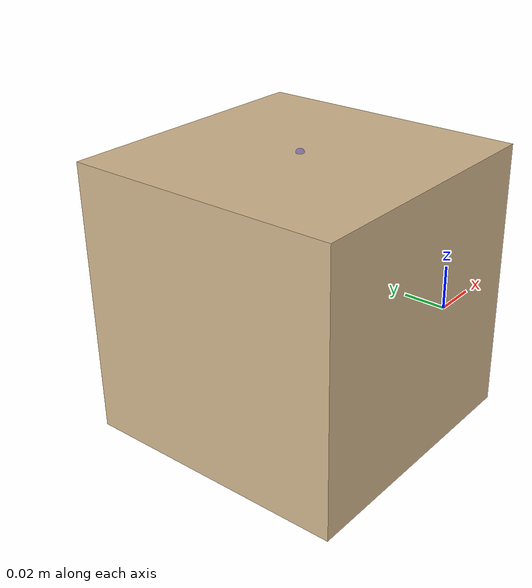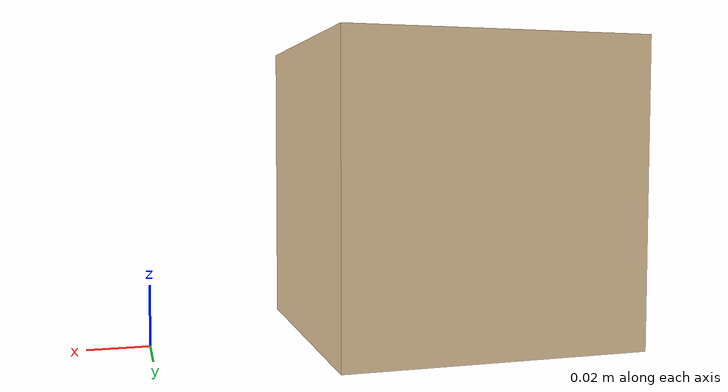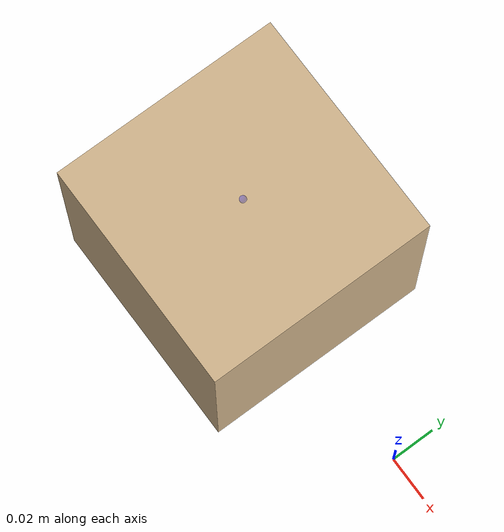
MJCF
<mujoco model="singleblock">
  <asset>
    <texture file="../textures/light-wood.png" name="tex-light-wood" type="2d" />
    <material name="light-wood" reflectance="0.5" texrepeat="20 20" texture="tex-light-wood" texuniform="true" />
  </asset>
  <equality>
  </equality>
  <worldbody>
    <body name="1_block_l" pos="-0.101 0.0 0.05" quat="1 0 0 0">
      <geom density="100" material="light-wood" name="box_l_geom" pos="0 0 0" rgba="0.82 0.71 0.55 1" size="0.05 0.05 0.05" solref="0.001 1" type="box" />
      <site name="1_block_l_bottom_site" pos="0.0 0.0 -0.05" rgba="0 0 1 0.3" size="0.0015" />
      <site name="1_block_l_top_site" pos="0.0 0.0 0.05" rgba="0 0 1 0.3" size="0.0015" />
      <site name="1_block_l_horizontal_radius_site" pos="0. 0. 0." rgba="0 0 1 0." size="0.1" />
    </body>
  </worldbody>
</mujoco>
